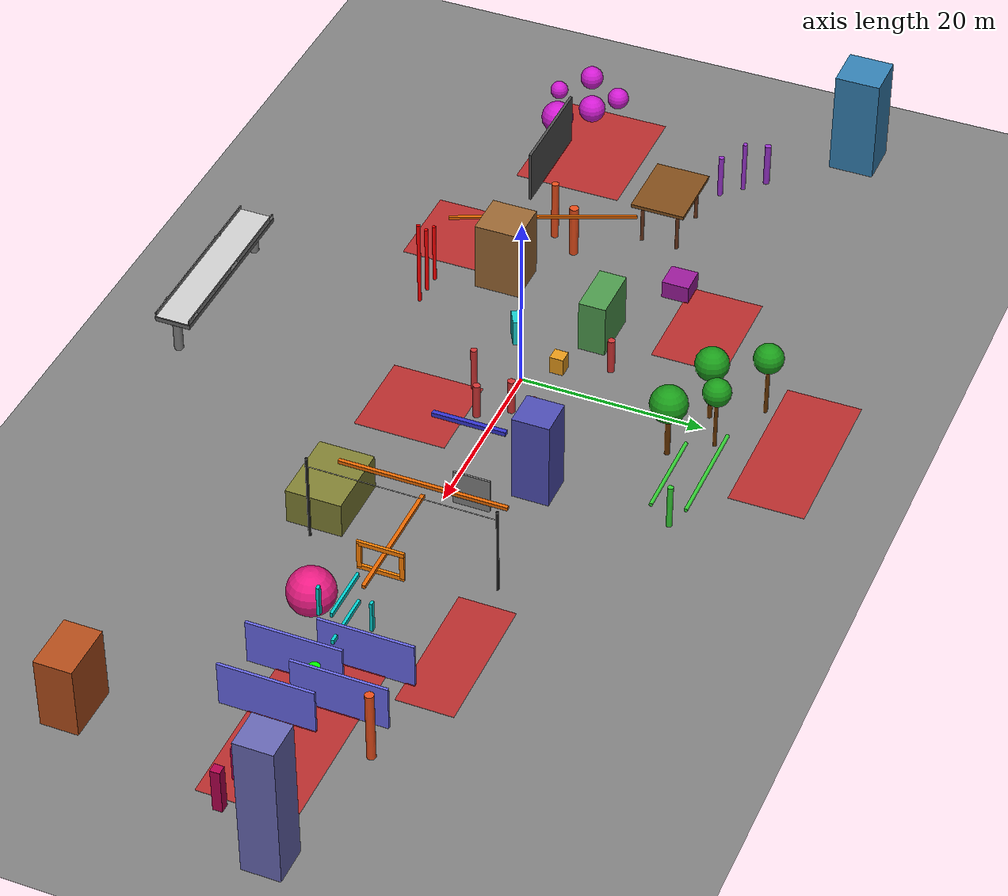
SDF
<sdf version="1.9">
 <world name="default">
  <physics type="ode">
   <max_step_size>0.01</max_step_size>
   <real_time_factor>1.0</real_time_factor>
   <real_time_update_rate>100</real_time_update_rate>
  </physics>
  <plugin filename="gz-sim-physics-system" name="gz::sim::systems::Physics"/>
  <plugin filename="gz-sim-user-commands-system" name="gz::sim::systems::UserCommands"/>
  <plugin filename="gz-sim-scene-broadcaster-system" name="gz::sim::systems::SceneBroadcaster"/>
  <plugin filename="gz-sim-sensors-system" name="gz::sim::systems::Sensors">
   <render_engine>ogre2</render_engine>
  </plugin>
  <plugin filename="gz-sim-imu-system" name="gz::sim::systems::Imu"/>
  <plugin filename="gz-sim-magnetometer-system" name="gz::sim::systems::Magnetometer"/>
  <plugin filename="gz-sim-air-pressure-system" name="gz::sim::systems::AirPressure"/>
  <plugin filename="gz-sim-navsat-system" name="gz::sim::systems::NavSat"/>
  <plugin filename="gz-sim-thermal-system" name="gz::sim::systems::Thermal">
   <temperature>300.0</temperature>
  </plugin>
  <gravity>0 0 -9.8</gravity>
  <magnetic_field>6e-06 2.3e-05 -4.2e-05</magnetic_field>
  <atmosphere type="adiabatic"/>
  <scene>
   <grid>false</grid>
   <ambient>0.4 0.4 0.4 1</ambient>
   <background>0.7 0.7 0.7 1</background>
   <shadows>true</shadows>
  </scene>
  <model name="ground_plane">
   <static>true</static>
   <link name="link">
    <temperature>293.15</temperature>
    <collision name="collision">
     <geometry><plane><normal>0 0 1</normal><size>300 300</size></plane></geometry>
    </collision>
    <visual name="visual">
     <geometry><plane><normal>0 0 1</normal><size>300 300</size></plane></geometry>
     <material>
      <ambient>0.5 0.5 0.5 1</ambient>
      <diffuse>0.5 0.5 0.5 1</diffuse>
      <specular>0.2 0.2 0.2 1</specular>
     </material>
    </visual>
   </link>
  </model>
  <model name="pillar_1">
   <static>true</static>
   <pose>5 1 2 0 0 0</pose>
   <link name="l">
    <collision name="c">
     <geometry><cylinder><radius>0.4</radius><length>4</length></cylinder></geometry>
    </collision>
    <visual name="v">
     <geometry><cylinder><radius>0.4</radius><length>4</length></cylinder></geometry>
     <material><diffuse>0.8 0.2 0.2 1</diffuse></material>
    </visual>
   </link>
  </model>
  <model name="pillar_2">
   <static>true</static>
   <pose>7 -2 2 0 0 0</pose>
   <link name="l">
    <collision name="c">
     <geometry><cylinder><radius>0.4</radius><length>4</length></cylinder></geometry>
    </collision>
    <visual name="v">
     <geometry><cylinder><radius>0.4</radius><length>4</length></cylinder></geometry>
     <material><diffuse>0.8 0.2 0.2 1</diffuse></material>
    </visual>
   </link>
  </model>
  <model name="pillar_3">
   <static>true</static>
   <pose>3 -4 2.5 0 0 0</pose>
   <link name="l">
    <collision name="c">
     <geometry><cylinder><radius>0.35</radius><length>5</length></cylinder></geometry>
    </collision>
    <visual name="v">
     <geometry><cylinder><radius>0.35</radius><length>5</length></cylinder></geometry>
     <material><diffuse>0.8 0.2 0.2 1</diffuse></material>
    </visual>
   </link>
  </model>
  <model name="pillar_4">
   <static>true</static>
   <pose>9 5 3 0 0 0</pose>
   <link name="l">
    <collision name="c">
     <geometry><cylinder><radius>0.45</radius><length>6</length></cylinder></geometry>
    </collision>
    <visual name="v">
     <geometry><cylinder><radius>0.45</radius><length>6</length></cylinder></geometry>
     <material><diffuse>0.8 0.2 0.2 1</diffuse></material>
    </visual>
   </link>
  </model>
  <model name="pillar_5">
   <static>true</static>
   <pose>-5 8 2 0 0 0</pose>
   <link name="l">
    <collision name="c">
     <geometry><cylinder><radius>0.4</radius><length>4</length></cylinder></geometry>
    </collision>
    <visual name="v">
     <geometry><cylinder><radius>0.4</radius><length>4</length></cylinder></geometry>
     <material><diffuse>0.8 0.2 0.2 1</diffuse></material>
    </visual>
   </link>
  </model>
  <model name="building_1">
   <static>true</static>
   <pose>15 8 5 0 0 0</pose>
   <link name="l">
    <collision name="c"><geometry><box><size>4 4 10</size></box></geometry></collision>
    <visual name="v">
     <geometry><box><size>4 4 10</size></box></geometry>
     <material><diffuse>0.3 0.3 0.7 1</diffuse></material>
    </visual>
   </link>
  </model>
  <model name="building_2">
   <static>true</static>
   <pose>-10 5 3 0 0 0</pose>
   <link name="l">
    <collision name="c"><geometry><box><size>6 3 6</size></box></geometry></collision>
    <visual name="v">
     <geometry><box><size>6 3 6</size></box></geometry>
     <material><diffuse>0.3 0.6 0.3 1</diffuse></material>
    </visual>
   </link>
  </model>
  <model name="building_3">
   <static>true</static>
   <pose>-15 -8 4 0 0 0</pose>
   <link name="l">
    <collision name="c"><geometry><box><size>5 5 8</size></box></geometry></collision>
    <visual name="v">
     <geometry><box><size>5 5 8</size></box></geometry>
     <material><diffuse>0.6 0.4 0.2 1</diffuse></material>
    </visual>
   </link>
  </model>
  <model name="building_4">
   <static>true</static>
   <pose>25 -10 2 0 0 0</pose>
   <link name="l">
    <collision name="c"><geometry><box><size>8 6 4</size></box></geometry></collision>
    <visual name="v">
     <geometry><box><size>8 6 4</size></box></geometry>
     <material><diffuse>0.5 0.5 0.2 1</diffuse></material>
    </visual>
   </link>
  </model>
  <model name="gate_top">
   <static>true</static>
   <pose>13.5 0 4.75 0 0 0</pose>
   <link name="l">
    <collision name="c"><geometry><box><size>0.5 8 0.5</size></box></geometry></collision>
    <visual name="v">
     <geometry><box><size>0.5 8 0.5</size></box></geometry>
     <material><diffuse>0.2 0.2 0.8 1</diffuse></material>
    </visual>
   </link>
  </model>
  <model name="wall_with_hole">
   <static>true</static>
   <pose>20 0 2 0 0 0</pose>
   <link name="wall_left">
    <pose>0 3 0 0 0 0</pose>
    <collision name="c"><geometry><box><size>0.2 4 4</size></box></geometry></collision>
    <visual name="v">
     <geometry><box><size>0.2 4 4</size></box></geometry>
     <material><diffuse>0.5 0.5 0.5 1</diffuse></material>
    </visual>
   </link>
  </model>
  <model name="ring1_top">
   <static>true</static>
   <pose>35 0 6 0 0 0</pose>
   <link name="l">
    <collision name="c"><geometry><box><size>0.3 5 0.5</size></box></geometry></collision>
    <visual name="v">
     <geometry><box><size>0.3 5 0.5</size></box></geometry>
     <material><diffuse>1 0.5 0 1</diffuse></material>
    </visual>
   </link>
  </model>
  <model name="ring1_bot">
   <static>true</static>
   <pose>35 0 3 0 0 0</pose>
   <link name="l">
    <collision name="c"><geometry><box><size>0.3 5 0.5</size></box></geometry></collision>
    <visual name="v">
     <geometry><box><size>0.3 5 0.5</size></box></geometry>
     <material><diffuse>1 0.5 0 1</diffuse></material>
    </visual>
   </link>
  </model>
  <model name="ring1_left">
   <static>true</static>
   <pose>35 2.25 4.5 0 0 0</pose>
   <link name="l">
    <collision name="c"><geometry><box><size>0.3 0.5 3</size></box></geometry></collision>
    <visual name="v">
     <geometry><box><size>0.3 0.5 3</size></box></geometry>
     <material><diffuse>1 0.5 0 1</diffuse></material>
    </visual>
   </link>
  </model>
  <model name="ring1_right">
   <static>true</static>
   <pose>35 -2.25 4.5 0 0 0</pose>
   <link name="l">
    <collision name="c"><geometry><box><size>0.3 0.5 3</size></box></geometry></collision>
    <visual name="v">
     <geometry><box><size>0.3 0.5 3</size></box></geometry>
     <material><diffuse>1 0.5 0 1</diffuse></material>
    </visual>
   </link>
  </model>
  <model name="box_obs_1">
   <static>true</static>
   <pose>-3 3 1 0 0 0</pose>
   <link name="l">
    <collision name="c"><geometry><box><size>1.5 1.5 2</size></box></geometry></collision>
    <visual name="v">
     <geometry><box><size>1.5 1.5 2</size></box></geometry>
     <material><diffuse>0.9 0.6 0.1 1</diffuse></material>
    </visual>
   </link>
  </model>
  <model name="box_obs_2">
   <static>true</static>
   <pose>-6 -3 1.5 0 0 0.5</pose>
   <link name="l">
    <collision name="c"><geometry><box><size>2 1 3</size></box></geometry></collision>
    <visual name="v">
     <geometry><box><size>2 1 3</size></box></geometry>
     <material><diffuse>0.1 0.8 0.8 1</diffuse></material>
    </visual>
   </link>
  </model>
  <model name="box_obs_4">
   <static>true</static>
   <pose>-20 10 1 0 0 0</pose>
   <link name="l">
    <collision name="c"><geometry><box><size>3 3 2</size></box></geometry></collision>
    <visual name="v">
     <geometry><box><size>3 3 2</size></box></geometry>
     <material><diffuse>0.6 0.1 0.6 1</diffuse></material>
    </visual>
   </link>
  </model>
  <model name="sphere_obs_1">
   <static>true</static>
   <pose>40 -5 3 0 0 0</pose>
   <link name="l">
    <collision name="c"><geometry><sphere><radius>2.5</radius></sphere></geometry></collision>
    <visual name="v">
     <geometry><sphere><radius>2.5</radius></sphere></geometry>
     <material><diffuse>0.9 0.1 0.5 1</diffuse></material>
    </visual>
   </link>
  </model>
  <model name="spike_1">
   <static>true</static>
   <pose>-8 -15 5 0 0 0</pose>
   <link name="l">
    <collision name="c">
     <geometry><cylinder><radius>0.2</radius><length>10</length></cylinder></geometry>
    </collision>
    <visual name="v">
     <geometry><cylinder><radius>0.2</radius><length>10</length></cylinder></geometry>
     <material><diffuse>1 0 0 1</diffuse></material>
    </visual>
   </link>
  </model>
  <model name="spike_2">
   <static>true</static>
   <pose>-10 -15 4 0 0 0</pose>
   <link name="l">
    <collision name="c">
     <geometry><cylinder><radius>0.2</radius><length>8</length></cylinder></geometry>
    </collision>
    <visual name="v">
     <geometry><cylinder><radius>0.2</radius><length>8</length></cylinder></geometry>
     <material><diffuse>1 0 0 1</diffuse></material>
    </visual>
   </link>
  </model>
  <model name="spike_3">
   <static>true</static>
   <pose>-12 -15 3.5 0 0 0</pose>
   <link name="l">
    <collision name="c">
     <geometry><cylinder><radius>0.2</radius><length>7</length></cylinder></geometry>
    </collision>
    <visual name="v">
     <geometry><cylinder><radius>0.2</radius><length>7</length></cylinder></geometry>
     <material><diffuse>1 0 0 1</diffuse></material>
    </visual>
   </link>
  </model>
  <model name="final_goal_marker">
   <static>true</static>
   <pose>50 0 2 0 0 0</pose>
   <link name="l">
    <visual name="v">
     <geometry><cylinder><radius>0.6</radius><length>4</length></cylinder></geometry>
     <material><diffuse>0 1 0 1</diffuse></material>
    </visual>
   </link>
  </model>
  <model name="nofly_zone_1">
   <static>true</static>
   <pose>8 -8 0.05 0 0 0</pose>
   <link name="l">
    <collision name="c"><geometry><box><size>10 10 0.1</size></box></geometry></collision>
    <visual name="v">
     <geometry><box><size>10 10 0.1</size></box></geometry>
     <material><ambient>0.9 0.0 0.0 0.6</ambient><diffuse>0.9 0.0 0.0 0.6</diffuse></material>
    </visual>
   </link>
  </model>
  <model name="nofly_zone_2">
   <static>true</static>
   <pose>-15 15 0.05 0 0 0</pose>
   <link name="l">
    <collision name="c"><geometry><box><size>12 8 0.1</size></box></geometry></collision>
    <visual name="v">
     <geometry><box><size>12 8 0.1</size></box></geometry>
     <material><ambient>0.9 0.0 0.0 0.6</ambient><diffuse>0.9 0.0 0.0 0.6</diffuse></material>
    </visual>
   </link>
  </model>
  <model name="nofly_zone_3">
   <static>true</static>
   <pose>40 10 0.05 0 0 0</pose>
   <link name="l">
    <collision name="c"><geometry><box><size>15 6 0.1</size></box></geometry></collision>
    <visual name="v">
     <geometry><box><size>15 6 0.1</size></box></geometry>
     <material><ambient>0.9 0.0 0.0 0.6</ambient><diffuse>0.9 0.0 0.0 0.6</diffuse></material>
    </visual>
   </link>
  </model>
  <model name="nofly_zone_4">
   <static>true</static>
   <pose>-20 -15 0.05 0 0 0</pose>
   <link name="l">
    <collision name="c"><geometry><box><size>10 10 0.1</size></box></geometry></collision>
    <visual name="v">
     <geometry><box><size>10 10 0.1</size></box></geometry>
     <material><ambient>0.9 0.0 0.0 0.6</ambient><diffuse>0.9 0.0 0.0 0.6</diffuse></material>
    </visual>
   </link>
  </model>
  <model name="zzwall_1">
   <static>true</static>
   <pose>45 3 2.5 0 0 0</pose>
   <link name="l">
    <collision name="c"><geometry><box><size>0.3 10 5</size></box></geometry></collision>
    <visual name="v">
     <geometry><box><size>0.3 10 5</size></box></geometry>
     <material><diffuse>0.4 0.4 0.9 1</diffuse></material>
    </visual>
   </link>
  </model>
  <model name="zzwall_2">
   <static>true</static>
   <pose>48 -3 2.5 0 0 0</pose>
   <link name="l">
    <collision name="c"><geometry><box><size>0.3 10 5</size></box></geometry></collision>
    <visual name="v">
     <geometry><box><size>0.3 10 5</size></box></geometry>
     <material><diffuse>0.4 0.4 0.9 1</diffuse></material>
    </visual>
   </link>
  </model>
  <model name="zzwall_3">
   <static>true</static>
   <pose>51 3 2.5 0 0 0</pose>
   <link name="l">
    <collision name="c"><geometry><box><size>0.3 10 5</size></box></geometry></collision>
    <visual name="v">
     <geometry><box><size>0.3 10 5</size></box></geometry>
     <material><diffuse>0.4 0.4 0.9 1</diffuse></material>
    </visual>
   </link>
  </model>
  <model name="zzwall_4">
   <static>true</static>
   <pose>54 -3 2.5 0 0 0</pose>
   <link name="l">
    <collision name="c"><geometry><box><size>0.3 10 5</size></box></geometry></collision>
    <visual name="v">
     <geometry><box><size>0.3 10 5</size></box></geometry>
     <material><diffuse>0.4 0.4 0.9 1</diffuse></material>
    </visual>
   </link>
  </model>
  <model name="platform_top">
   <static>true</static>
   <pose>-30 5 5 0 0 0</pose>
   <link name="l">
    <collision name="c"><geometry><box><size>8 6 0.4</size></box></geometry></collision>
    <visual name="v">
     <geometry><box><size>8 6 0.4</size></box></geometry>
     <material><diffuse>0.5 0.3 0.1 1</diffuse></material>
    </visual>
   </link>
  </model>
  <model name="platform_leg1">
   <static>true</static>
   <pose>-27 7 2.5 0 0 0</pose>
   <link name="l">
    <collision name="c">
     <geometry><cylinder><radius>0.2</radius><length>5</length></cylinder></geometry>
    </collision>
    <visual name="v">
     <geometry><cylinder><radius>0.2</radius><length>5</length></cylinder></geometry>
     <material><diffuse>0.4 0.2 0.1 1</diffuse></material>
    </visual>
   </link>
  </model>
  <model name="platform_leg2">
   <static>true</static>
   <pose>-33 7 2.5 0 0 0</pose>
   <link name="l">
    <collision name="c">
     <geometry><cylinder><radius>0.2</radius><length>5</length></cylinder></geometry>
    </collision>
    <visual name="v">
     <geometry><cylinder><radius>0.2</radius><length>5</length></cylinder></geometry>
     <material><diffuse>0.4 0.2 0.1 1</diffuse></material>
    </visual>
   </link>
  </model>
  <model name="platform_leg3">
   <static>true</static>
   <pose>-27 3 2.5 0 0 0</pose>
   <link name="l">
    <collision name="c">
     <geometry><cylinder><radius>0.2</radius><length>5</length></cylinder></geometry>
    </collision>
    <visual name="v">
     <geometry><cylinder><radius>0.2</radius><length>5</length></cylinder></geometry>
     <material><diffuse>0.4 0.2 0.1 1</diffuse></material>
    </visual>
   </link>
  </model>
  <model name="platform_leg4">
   <static>true</static>
   <pose>-33 3 2.5 0 0 0</pose>
   <link name="l">
    <collision name="c">
     <geometry><cylinder><radius>0.2</radius><length>5</length></cylinder></geometry>
    </collision>
    <visual name="v">
     <geometry><cylinder><radius>0.2</radius><length>5</length></cylinder></geometry>
     <material><diffuse>0.4 0.2 0.1 1</diffuse></material>
    </visual>
   </link>
  </model>
  <model name="tunnel_right">
   <static>true</static>
   <pose>-35 -11 3 0 0 1.5708</pose>
   <link name="l">
    <collision name="c"><geometry><box><size>0.3 12 6</size></box></geometry></collision>
    <visual name="v">
     <geometry><box><size>0.3 12 6</size></box></geometry>
     <material><diffuse>0.3 0.3 0.3 1</diffuse></material>
    </visual>
   </link>
  </model>
  <model name="tree_trunk_1">
   <static>true</static>
   <pose>-2 20 3 0 0 0</pose>
   <link name="l">
    <collision name="c">
     <geometry><cylinder><radius>0.25</radius><length>6</length></cylinder></geometry>
    </collision>
    <visual name="v">
     <geometry><cylinder><radius>0.25</radius><length>6</length></cylinder></geometry>
     <material><diffuse>0.4 0.2 0.0 1</diffuse></material>
    </visual>
   </link>
  </model>
  <model name="tree_canopy_1">
   <static>true</static>
   <pose>-2 20 7 0 0 0</pose>
   <link name="l">
    <collision name="c"><geometry><sphere><radius>1.8</radius></sphere></geometry></collision>
    <visual name="v">
     <geometry><sphere><radius>1.8</radius></sphere></geometry>
     <material><diffuse>0.1 0.6 0.1 1</diffuse></material>
    </visual>
   </link>
  </model>
  <model name="tree_trunk_2">
   <static>true</static>
   <pose>2 22 3 0 0 0</pose>
   <link name="l">
    <collision name="c">
     <geometry><cylinder><radius>0.2</radius><length>6</length></cylinder></geometry>
    </collision>
    <visual name="v">
     <geometry><cylinder><radius>0.2</radius><length>6</length></cylinder></geometry>
     <material><diffuse>0.4 0.2 0.0 1</diffuse></material>
    </visual>
   </link>
  </model>
  <model name="tree_canopy_2">
   <static>true</static>
   <pose>2 22 7 0 0 0</pose>
   <link name="l">
    <collision name="c"><geometry><sphere><radius>1.5</radius></sphere></geometry></collision>
    <visual name="v">
     <geometry><sphere><radius>1.5</radius></sphere></geometry>
     <material><diffuse>0.1 0.6 0.1 1</diffuse></material>
    </visual>
   </link>
  </model>
  <model name="tree_trunk_3">
   <static>true</static>
   <pose>-5 25 3 0 0 0</pose>
   <link name="l">
    <collision name="c">
     <geometry><cylinder><radius>0.22</radius><length>6</length></cylinder></geometry>
    </collision>
    <visual name="v">
     <geometry><cylinder><radius>0.22</radius><length>6</length></cylinder></geometry>
     <material><diffuse>0.4 0.2 0.0 1</diffuse></material>
    </visual>
   </link>
  </model>
  <model name="tree_canopy_3">
   <static>true</static>
   <pose>-5 25 7 0 0 0</pose>
   <link name="l">
    <collision name="c"><geometry><sphere><radius>1.6</radius></sphere></geometry></collision>
    <visual name="v">
     <geometry><sphere><radius>1.6</radius></sphere></geometry>
     <material><diffuse>0.1 0.6 0.1 1</diffuse></material>
    </visual>
   </link>
  </model>
  <model name="tree_trunk_4">
   <static>true</static>
   <pose>5 18 2.5 0 0 0</pose>
   <link name="l">
    <collision name="c">
     <geometry><cylinder><radius>0.3</radius><length>5</length></cylinder></geometry>
    </collision>
    <visual name="v">
     <geometry><cylinder><radius>0.3</radius><length>5</length></cylinder></geometry>
     <material><diffuse>0.4 0.2 0.0 1</diffuse></material>
    </visual>
   </link>
  </model>
  <model name="tree_canopy_4">
   <static>true</static>
   <pose>5 18 6.5 0 0 0</pose>
   <link name="l">
    <collision name="c"><geometry><sphere><radius>2.0</radius></sphere></geometry></collision>
    <visual name="v">
     <geometry><sphere><radius>2.0</radius></sphere></geometry>
     <material><diffuse>0.1 0.6 0.1 1</diffuse></material>
    </visual>
   </link>
  </model>
  <model name="beam_1">
   <static>true</static>
   <pose>25 0 6 0 0 0</pose>
   <link name="l">
    <collision name="c"><geometry><box><size>0.4 18 0.4</size></box></geometry></collision>
    <visual name="v">
     <geometry><box><size>0.4 18 0.4</size></box></geometry>
     <material><diffuse>0.9 0.4 0.0 1</diffuse></material>
    </visual>
   </link>
  </model>
  <model name="beam_2">
   <static>true</static>
   <pose>32 0 4.5 0 0 1.5708</pose>
   <link name="l">
    <collision name="c"><geometry><box><size>0.4 14 0.4</size></box></geometry></collision>
    <visual name="v">
     <geometry><box><size>0.4 14 0.4</size></box></geometry>
     <material><diffuse>0.9 0.4 0.0 1</diffuse></material>
    </visual>
   </link>
  </model>
  <model name="beam_3">
   <static>true</static>
   <pose>-18 -5 7 0 0 0.4</pose>
   <link name="l">
    <collision name="c"><geometry><box><size>0.3 20 0.3</size></box></geometry></collision>
    <visual name="v">
     <geometry><box><size>0.3 20 0.3</size></box></geometry>
     <material><diffuse>0.9 0.4 0.0 1</diffuse></material>
    </visual>
   </link>
  </model>
  <model name="slalom_1">
   <static>true</static>
   <pose>60 2 1.5 0 0 0</pose>
   <link name="l">
    <collision name="c"><geometry><box><size>1 1 3</size></box></geometry></collision>
    <visual name="v">
     <geometry><box><size>1 1 3</size></box></geometry>
     <material><diffuse>0.7 0.0 0.3 1</diffuse></material>
    </visual>
   </link>
  </model>
  <model name="slalom_2">
   <static>true</static>
   <pose>62 -2 2 0 0 0</pose>
   <link name="l">
    <collision name="c"><geometry><box><size>1 1 4</size></box></geometry></collision>
    <visual name="v">
     <geometry><box><size>1 1 4</size></box></geometry>
     <material><diffuse>0.7 0.0 0.3 1</diffuse></material>
    </visual>
   </link>
  </model>
  <model name="slalom_3">
   <static>true</static>
   <pose>64 2 1.5 0 0 0</pose>
   <link name="l">
    <collision name="c"><geometry><box><size>1 1 3</size></box></geometry></collision>
    <visual name="v">
     <geometry><box><size>1 1 3</size></box></geometry>
     <material><diffuse>0.7 0.0 0.3 1</diffuse></material>
    </visual>
   </link>
  </model>
  <model name="slalom_4">
   <static>true</static>
   <pose>66 -2 2.5 0 0 0</pose>
   <link name="l">
    <collision name="c"><geometry><box><size>1 1 5</size></box></geometry></collision>
    <visual name="v">
     <geometry><box><size>1 1 5</size></box></geometry>
     <material><diffuse>0.7 0.0 0.3 1</diffuse></material>
    </visual>
   </link>
  </model>
  <model name="slalom_5">
   <static>true</static>
   <pose>68 2 2 0 0 0</pose>
   <link name="l">
    <collision name="c"><geometry><box><size>1 1 4</size></box></geometry></collision>
    <visual name="v">
     <geometry><box><size>1 1 4</size></box></geometry>
     <material><diffuse>0.7 0.0 0.3 1</diffuse></material>
    </visual>
   </link>
  </model>
  <model name="ring2_top">
   <static>true</static>
   <pose>43 0 7 0 0 1.5708</pose>
   <link name="l">
    <collision name="c"><geometry><box><size>0.3 6 0.5</size></box></geometry></collision>
    <visual name="v">
     <geometry><box><size>0.3 6 0.5</size></box></geometry>
     <material><diffuse>0.0 0.8 0.8 1</diffuse></material>
    </visual>
   </link>
  </model>
  <model name="ring2_bot">
   <static>true</static>
   <pose>43 0 3.5 0 0 1.5708</pose>
   <link name="l">
    <collision name="c"><geometry><box><size>0.3 6 0.5</size></box></geometry></collision>
    <visual name="v">
     <geometry><box><size>0.3 6 0.5</size></box></geometry>
     <material><diffuse>0.0 0.8 0.8 1</diffuse></material>
    </visual>
   </link>
  </model>
  <model name="ring2_left">
   <static>true</static>
   <pose>43 2.75 5.25 0 0 1.5708</pose>
   <link name="l">
    <collision name="c"><geometry><box><size>0.3 0.5 3.5</size></box></geometry></collision>
    <visual name="v">
     <geometry><box><size>0.3 0.5 3.5</size></box></geometry>
     <material><diffuse>0.0 0.8 0.8 1</diffuse></material>
    </visual>
   </link>
  </model>
  <model name="ring2_right">
   <static>true</static>
   <pose>43 -2.75 5.25 0 0 1.5708</pose>
   <link name="l">
    <collision name="c"><geometry><box><size>0.3 0.5 3.5</size></box></geometry></collision>
    <visual name="v">
     <geometry><box><size>0.3 0.5 3.5</size></box></geometry>
     <material><diffuse>0.0 0.8 0.8 1</diffuse></material>
    </visual>
   </link>
  </model>
  <model name="sph_1">
   <static>true</static>
   <pose>-45 -10 2 0 0 0</pose>
   <link name="l">
    <collision name="c"><geometry><sphere><radius>1.5</radius></sphere></geometry></collision>
    <visual name="v">
     <geometry><sphere><radius>1.5</radius></sphere></geometry>
     <material><diffuse>0.8 0.1 0.8 1</diffuse></material>
    </visual>
   </link>
  </model>
  <model name="sph_2">
   <static>true</static>
   <pose>-48 -8 2 0 0 0</pose>
   <link name="l">
    <collision name="c"><geometry><sphere><radius>1.2</radius></sphere></geometry></collision>
    <visual name="v">
     <geometry><sphere><radius>1.2</radius></sphere></geometry>
     <material><diffuse>0.8 0.1 0.8 1</diffuse></material>
    </visual>
   </link>
  </model>
  <model name="sph_3">
   <static>true</static>
   <pose>-42 -13 2 0 0 0</pose>
   <link name="l">
    <collision name="c"><geometry><sphere><radius>1.8</radius></sphere></geometry></collision>
    <visual name="v">
     <geometry><sphere><radius>1.8</radius></sphere></geometry>
     <material><diffuse>0.8 0.1 0.8 1</diffuse></material>
    </visual>
   </link>
  </model>
  <model name="sph_4">
   <static>true</static>
   <pose>-45 -14 3.5 0 0 0</pose>
   <link name="l">
    <collision name="c"><geometry><sphere><radius>1.0</radius></sphere></geometry></collision>
    <visual name="v">
     <geometry><sphere><radius>1.0</radius></sphere></geometry>
     <material><diffuse>0.8 0.1 0.8 1</diffuse></material>
    </visual>
   </link>
  </model>
  <model name="sph_5">
   <static>true</static>
   <pose>-50 -12 2.5 0 0 0</pose>
   <link name="l">
    <collision name="c"><geometry><sphere><radius>1.3</radius></sphere></geometry></collision>
    <visual name="v">
     <geometry><sphere><radius>1.3</radius></sphere></geometry>
     <material><diffuse>0.8 0.1 0.8 1</diffuse></material>
    </visual>
   </link>
  </model>
  <model name="bld_6">
   <static>true</static>
   <pose>-50 20 6 0 0 0</pose>
   <link name="l">
    <collision name="c"><geometry><box><size>5 5 12</size></box></geometry></collision>
    <visual name="v">
     <geometry><box><size>5 5 12</size></box></geometry>
     <material><diffuse>0.2 0.5 0.7 1</diffuse></material>
    </visual>
   </link>
  </model>
  <model name="bld_7">
   <static>true</static>
   <pose>60 -20 4 0 0 0</pose>
   <link name="l">
    <collision name="c"><geometry><box><size>6 4 8</size></box></geometry></collision>
    <visual name="v">
     <geometry><box><size>6 4 8</size></box></geometry>
     <material><diffuse>0.7 0.3 0.1 1</diffuse></material>
    </visual>
   </link>
  </model>
  <model name="bld_8">
   <static>true</static>
   <pose>70 5 8 0 0 0</pose>
   <link name="l">
    <collision name="c"><geometry><box><size>4 4 16</size></box></geometry></collision>
    <visual name="v">
     <geometry><box><size>4 4 16</size></box></geometry>
     <material><diffuse>0.4 0.4 0.7 1</diffuse></material>
    </visual>
   </link>
  </model>
  <model name="pillar_6">
   <static>true</static>
   <pose>-22 -3 3 0 0 0</pose>
   <link name="l">
    <collision name="c">
     <geometry><cylinder><radius>0.5</radius><length>6</length></cylinder></geometry>
    </collision>
    <visual name="v">
     <geometry><cylinder><radius>0.5</radius><length>6</length></cylinder></geometry>
     <material><diffuse>0.9 0.3 0.1 1</diffuse></material>
    </visual>
   </link>
  </model>
  <model name="pillar_7">
   <static>true</static>
   <pose>-24 -6 3.5 0 0 0</pose>
   <link name="l">
    <collision name="c">
     <geometry><cylinder><radius>0.4</radius><length>7</length></cylinder></geometry>
    </collision>
    <visual name="v">
     <geometry><cylinder><radius>0.4</radius><length>7</length></cylinder></geometry>
     <material><diffuse>0.9 0.3 0.1 1</diffuse></material>
    </visual>
   </link>
  </model>
  <model name="pillar_8">
   <static>true</static>
   <pose>55 8 4 0 0 0</pose>
   <link name="l">
    <collision name="c">
     <geometry><cylinder><radius>0.45</radius><length>8</length></cylinder></geometry>
    </collision>
    <visual name="v">
     <geometry><cylinder><radius>0.45</radius><length>8</length></cylinder></geometry>
     <material><diffuse>0.9 0.3 0.1 1</diffuse></material>
    </visual>
   </link>
  </model>
  <model name="nofly_zone_5">
   <static>true</static>
   <pose>55 0 0.05 0 0 0</pose>
   <link name="l">
    <collision name="c"><geometry><box><size>20 10 0.1</size></box></geometry></collision>
    <visual name="v">
     <geometry><box><size>20 10 0.1</size></box></geometry>
     <material><ambient>0.9 0.0 0.0 0.6</ambient><diffuse>0.9 0.0 0.0 0.6</diffuse></material>
    </visual>
   </link>
  </model>
  <model name="nofly_zone_6">
   <static>true</static>
   <pose>-40 -8 0.05 0 0 0</pose>
   <link name="l">
    <collision name="c"><geometry><box><size>15 12 0.1</size></box></geometry></collision>
    <visual name="v">
     <geometry><box><size>15 12 0.1</size></box></geometry>
     <material><ambient>0.9 0.0 0.0 0.6</ambient><diffuse>0.9 0.0 0.0 0.6</diffuse></material>
    </visual>
   </link>
  </model>
  <model name="nofly_zone_7">
   <static>true</static>
   <pose>0 30 0.05 0 0 0</pose>
   <link name="l">
    <collision name="c"><geometry><box><size>18 8 0.1</size></box></geometry></collision>
    <visual name="v">
     <geometry><box><size>18 8 0.1</size></box></geometry>
     <material><ambient>0.9 0.0 0.0 0.6</ambient><diffuse>0.9 0.0 0.0 0.6</diffuse></material>
    </visual>
   </link>
  </model>
  <model name="forest_col_1">
   <static>true</static>
   <pose>-38 8 2.5 0 0 0</pose>
   <link name="l">
    <collision name="c">
     <geometry><cylinder><radius>0.3</radius><length>5</length></cylinder></geometry>
    </collision>
    <visual name="v">
     <geometry><cylinder><radius>0.3</radius><length>5</length></cylinder></geometry>
     <material><diffuse>0.6 0.2 0.8 1</diffuse></material>
    </visual>
   </link>
  </model>
  <model name="forest_col_2">
   <static>true</static>
   <pose>-40 10 3 0 0 0</pose>
   <link name="l">
    <collision name="c">
     <geometry><cylinder><radius>0.25</radius><length>6</length></cylinder></geometry>
    </collision>
    <visual name="v">
     <geometry><cylinder><radius>0.25</radius><length>6</length></cylinder></geometry>
     <material><diffuse>0.6 0.2 0.8 1</diffuse></material>
    </visual>
   </link>
  </model>
  <model name="forest_col_3">
   <static>true</static>
   <pose>-42 12 2.5 0 0 0</pose>
   <link name="l">
    <collision name="c">
     <geometry><cylinder><radius>0.35</radius><length>5</length></cylinder></geometry>
    </collision>
    <visual name="v">
     <geometry><cylinder><radius>0.35</radius><length>5</length></cylinder></geometry>
     <material><diffuse>0.6 0.2 0.8 1</diffuse></material>
    </visual>
   </link>
  </model>
  <model name="pipe_low_1">
   <static>true</static>
   <pose>10 20 2 0 1.5708 0</pose>
   <link name="l">
    <collision name="c">
     <geometry><cylinder><radius>0.2</radius><length>10</length></cylinder></geometry>
    </collision>
    <visual name="v">
     <geometry><cylinder><radius>0.2</radius><length>10</length></cylinder></geometry>
     <material><diffuse>0.2 0.8 0.2 1</diffuse></material>
    </visual>
   </link>
  </model>
  <model name="pipe_low_2">
   <static>true</static>
   <pose>10 24 3.5 0 1.5708 0</pose>
   <link name="l">
    <collision name="c">
     <geometry><cylinder><radius>0.2</radius><length>12</length></cylinder></geometry>
    </collision>
    <visual name="v">
     <geometry><cylinder><radius>0.2</radius><length>12</length></cylinder></geometry>
     <material><diffuse>0.2 0.8 0.2 1</diffuse></material>
    </visual>
   </link>
  </model>
  <model name="pipe_vertical_1">
   <static>true</static>
   <pose>15 22 2.5 0 0 0</pose>
   <link name="l">
    <collision name="c">
     <geometry><cylinder><radius>0.3</radius><length>5</length></cylinder></geometry>
    </collision>
    <visual name="v">
     <geometry><cylinder><radius>0.3</radius><length>5</length></cylinder></geometry>
     <material><diffuse>0.2 0.8 0.2 1</diffuse></material>
    </visual>
   </link>
  </model>
  <model name="debris_box_1">
   <static>true</static>
   <pose>48 3 0.5 0 0 0.4</pose>
   <link name="l">
    <collision name="c"><geometry><box><size>1 1 1</size></box></geometry></collision>
    <visual name="v">
     <geometry><box><size>1 1 1</size></box></geometry>
     <material><diffuse>0.5 0.5 0.5 1</diffuse></material>
    </visual>
   </link>
  </model>
  <model name="debris_sphere_1">
   <static>true</static>
   <pose>52 -3 1 0 0 0</pose>
   <link name="l">
    <collision name="c"><geometry><sphere><radius>0.8</radius></sphere></geometry></collision>
    <visual name="v">
     <geometry><sphere><radius>0.8</radius></sphere></geometry>
     <material><diffuse>0.4 0.4 0.4 1</diffuse></material>
    </visual>
   </link>
  </model>
  <model name="inspection_bridge">
   <static>true</static>
   <pose>0 -35 4 0 0 0</pose>
   <link name="deck">
    <temperature>300.0</temperature>
    <collision name="collision"><geometry><box><size>20 4 0.5</size></box></geometry></collision>
    <visual name="visual">
     <geometry><box><size>20 4 0.5</size></box></geometry>
     <material><ambient>0.3 0.3 0.3 1</ambient><diffuse>0.4 0.4 0.4 1</diffuse></material>
    </visual>
   </link>
   <link name="full_bridge_crack_overlay">
    <pose>0 0 0.35 0 0 0</pose>
    <visual name="visual">
     <geometry><plane><normal>0 0 1</normal><size>20 4</size></plane></geometry>
     <material>
      <ambient>0.8 0.8 0.8 1</ambient>
      <diffuse>0.8 0.8 0.8 1</diffuse>
      <pbr>
       <metal>
        <albedo_map>/home/harsh/PX4-Autopilot/Tools/simulation/gz/models/bridge_materials/textures/textures/concrete_crack_albedo.png</albedo_map>
        <normal_map>/home/harsh/PX4-Autopilot/Tools/simulation/gz/models/bridge_materials/textures/textures/concrete_crack_normal.png</normal_map>
        <texture_scaling>10 2</texture_scaling>
        <roughness>0.9</roughness>
        <metalness>0.1</metalness>
       </metal>
      </pbr>
     </material>
    </visual>
   </link>
   <link name="rail_left">
    <pose>0 1.9 0.5 0 0 0</pose>
    <collision name="collision"><geometry><box><size>20 0.1 0.6</size></box></geometry></collision>
    <visual name="visual">
     <geometry><box><size>20 0.1 0.6</size></box></geometry>
     <material><ambient>0.4 0.4 0.4 1</ambient><diffuse>0.5 0.5 0.5 1</diffuse></material>
    </visual>
   </link>
   <link name="spall_L1">
    <pose>-9.5 1.96 0.5 0 0 0</pose>
    <visual name="v">
     <geometry><plane><normal>0 1 0</normal><size>0.8 0.4</size></plane></geometry>
     <material>
      <ambient>0.8 0.8 0.8 1</ambient>
      <diffuse>0.8 0.8 0.8 1</diffuse>
      <pbr>
       <metal>
        <albedo_map>/home/harsh/PX4-Autopilot/Tools/simulation/gz/models/bridge_materials/textures/concrete_spall_albedo.png</albedo_map>
        <normal_map>/home/harsh/PX4-Autopilot/Tools/simulation/gz/models/bridge_materials/textures/concrete_spall_normal.png</normal_map>
        <roughness_map>/home/harsh/PX4-Autopilot/Tools/simulation/gz/models/bridge_materials/textures/concrete_spall_rough.png</roughness_map>
        <texture_scaling>1 1</texture_scaling>
       </metal>
      </pbr>
     </material>
    </visual>
   </link>
   <link name="spall_L7">
    <pose>-0.5 1.96 0.5 0 0 0</pose>
    <visual name="v">
     <geometry><plane><normal>0 1 0</normal><size>1.5 0.5</size></plane></geometry>
     <material>
      <ambient>0.8 0.8 0.8 1</ambient>
      <diffuse>0.8 0.8 0.8 1</diffuse>
      <pbr>
       <metal>
        <albedo_map>/home/harsh/PX4-Autopilot/Tools/simulation/gz/models/bridge_materials/textures/concrete_spall_albedo.png</albedo_map>
        <normal_map>/home/harsh/PX4-Autopilot/Tools/simulation/gz/models/bridge_materials/textures/concrete_spall_normal.png</normal_map>
        <roughness_map>/home/harsh/PX4-Autopilot/Tools/simulation/gz/models/bridge_materials/textures/concrete_spall_rough.png</roughness_map>
        <texture_scaling>1 1</texture_scaling>
       </metal>
      </pbr>
     </material>
    </visual>
   </link>
   <link name="spall_L10">
    <pose>4.0 1.96 0.5 0 0 0.4</pose>
    <visual name="v">
     <geometry><plane><normal>0 1 0</normal><size>0.6 0.5</size></plane></geometry>
     <material>
      <ambient>0.8 0.8 0.8 1</ambient>
      <diffuse>0.8 0.8 0.8 1</diffuse>
      <pbr>
       <metal>
        <albedo_map>/home/harsh/PX4-Autopilot/Tools/simulation/gz/models/bridge_materials/textures/concrete_spall_albedo.png</albedo_map>
        <normal_map>/home/harsh/PX4-Autopilot/Tools/simulation/gz/models/bridge_materials/textures/concrete_spall_normal.png</normal_map>
        <roughness_map>/home/harsh/PX4-Autopilot/Tools/simulation/gz/models/bridge_materials/textures/concrete_spall_rough.png</roughness_map>
        <texture_scaling>1 1</texture_scaling>
       </metal>
      </pbr>
     </material>
    </visual>
   </link>
   <link name="spall_L13">
    <pose>8.5 1.96 0.5 0 0 0</pose>
    <visual name="v">
     <geometry><plane><normal>0 1 0</normal><size>0.9 0.4</size></plane></geometry>
     <material>
      <ambient>0.8 0.8 0.8 1</ambient>
      <diffuse>0.8 0.8 0.8 1</diffuse>
      <pbr>
       <metal>
        <albedo_map>/home/harsh/PX4-Autopilot/Tools/simulation/gz/models/bridge_materials/textures/concrete_spall_albedo.png</albedo_map>
        <normal_map>/home/harsh/PX4-Autopilot/Tools/simulation/gz/models/bridge_materials/textures/concrete_spall_normal.png</normal_map>
        <roughness_map>/home/harsh/PX4-Autopilot/Tools/simulation/gz/models/bridge_materials/textures/concrete_spall_rough.png</roughness_map>
        <texture_scaling>1 1</texture_scaling>
       </metal>
      </pbr>
     </material>
    </visual>
   </link>
   <link name="spall_R1">
    <pose>-9.0 -1.96 0.5 0 0 0</pose>
    <visual name="v">
     <geometry><plane><normal>0 -1 0</normal><size>1.0 0.5</size></plane></geometry>
     <material>
      <ambient>0.8 0.8 0.8 1</ambient>
      <diffuse>0.8 0.8 0.8 1</diffuse>
      <pbr>
       <metal>
        <albedo_map>/home/harsh/PX4-Autopilot/Tools/simulation/gz/models/bridge_materials/textures/concrete_spall_albedo.png</albedo_map>
        <normal_map>/home/harsh/PX4-Autopilot/Tools/simulation/gz/models/bridge_materials/textures/concrete_spall_normal.png</normal_map>
        <roughness_map>/home/harsh/PX4-Autopilot/Tools/simulation/gz/models/bridge_materials/textures/concrete_spall_rough.png</roughness_map>
        <texture_scaling>1 1</texture_scaling>
       </metal>
      </pbr>
     </material>
    </visual>
   </link>
   <link name="spall_R4">
    <pose>-4.5 -1.96 0.5 0 0 -0.4</pose>
    <visual name="v">
     <geometry><plane><normal>0 -1 0</normal><size>0.8 0.4</size></plane></geometry>
     <material>
      <ambient>0.8 0.8 0.8 1</ambient>
      <diffuse>0.8 0.8 0.8 1</diffuse>
      <pbr>
       <metal>
        <albedo_map>/home/harsh/PX4-Autopilot/Tools/simulation/gz/models/bridge_materials/textures/concrete_spall_albedo.png</albedo_map>
        <normal_map>/home/harsh/PX4-Autopilot/Tools/simulation/gz/models/bridge_materials/textures/concrete_spall_normal.png</normal_map>
        <roughness_map>/home/harsh/PX4-Autopilot/Tools/simulation/gz/models/bridge_materials/textures/concrete_spall_rough.png</roughness_map>
        <texture_scaling>1 1</texture_scaling>
       </metal>
      </pbr>
     </material>
    </visual>
   </link>
   <link name="spall_R9">
    <pose>3.0 -1.96 0.6 0 0 0</pose>
    <visual name="v">
     <geometry><plane><normal>0 -1 0</normal><size>1.2 0.4</size></plane></geometry>
     <material>
      <ambient>0.8 0.8 0.8 1</ambient>
      <diffuse>0.8 0.8 0.8 1</diffuse>
      <pbr>
       <metal>
        <albedo_map>/home/harsh/PX4-Autopilot/Tools/simulation/gz/models/bridge_materials/textures/concrete_spall_albedo.png</albedo_map>
        <normal_map>/home/harsh/PX4-Autopilot/Tools/simulation/gz/models/bridge_materials/textures/concrete_spall_normal.png</normal_map>
        <roughness_map>/home/harsh/PX4-Autopilot/Tools/simulation/gz/models/bridge_materials/textures/concrete_spall_rough.png</roughness_map>
        <texture_scaling>1 1</texture_scaling>
       </metal>
      </pbr>
     </material>
    </visual>
   </link>
   <link name="spall_R12">
    <pose>7.5 -1.96 0.6 0 0 3.14</pose>
    <visual name="v">
     <geometry><plane><normal>0 -1 0</normal><size>0.6 0.6</size></plane></geometry>
     <material>
      <ambient>0.8 0.8 0.8 1</ambient>
      <diffuse>0.8 0.8 0.8 1</diffuse>
      <pbr>
       <metal>
        <albedo_map>/home/harsh/PX4-Autopilot/Tools/simulation/gz/models/bridge_materials/textures/concrete_spall_albedo.png</albedo_map>
        <normal_map>/home/harsh/PX4-Autopilot/Tools/simulation/gz/models/bridge_materials/textures/concrete_spall_normal.png</normal_map>
        <roughness_map>/home/harsh/PX4-Autopilot/Tools/simulation/gz/models/bridge_materials/textures/concrete_spall_rough.png</roughness_map>
        <texture_scaling>1 1</texture_scaling>
       </metal>
      </pbr>
     </material>
    </visual>
   </link>
   <link name="rail_right">
    <pose>0 -1.9 0.5 0 0 0</pose>
    <collision name="collision"><geometry><box><size>20 0.1 0.6</size></box></geometry></collision>
    <visual name="visual">
     <geometry><box><size>20 0.1 0.6</size></box></geometry>
     <material><ambient>0.4 0.4 0.4 1</ambient><diffuse>0.5 0.5 0.5 1</diffuse></material>
    </visual>
   </link>
   <link name="support_1">
    <pose>-9 0 -2 0 0 0</pose>
    <temperature>285.0</temperature>
    <collision name="collision">
     <geometry><cylinder><radius>0.5</radius><length>4</length></cylinder></geometry>
    </collision>
    <visual name="visual">
     <geometry><cylinder><radius>0.5</radius><length>4</length></cylinder></geometry>
     <material><diffuse>0.5 0.5 0.5 1</diffuse></material>
    </visual>
   </link>
   <link name="support_2">
    <pose>9 0 -2 0 0 0</pose>
    <temperature>285.0</temperature>
    <collision name="collision">
     <geometry><cylinder><radius>0.5</radius><length>4</length></cylinder></geometry>
    </collision>
    <visual name="visual">
     <geometry><cylinder><radius>0.5</radius><length>4</length></cylinder></geometry>
     <material><diffuse>0.5 0.5 0.5 1</diffuse></material>
    </visual>
   </link>
  </model>
  <model name="structural_damage_debris">
   <static>true</static>
   <pose>1.0 -33.0 4.26 0.5 0.2 1.5</pose>
   <link name="link">
    <temperature>380.0</temperature>
    <include><uri>https://fuel.gazebosim.org/1.0/OpenRobotics/models/Cinder Block</uri></include>
   </link>
  </model>
  <model name="power_line_pole_1">
   <static>true</static>
   <pose>30 10 5 0 0 0</pose>
   <link name="l">
    <collision name="c">
     <geometry><cylinder><radius>0.15</radius><length>10</length></cylinder></geometry>
    </collision>
    <visual name="v">
     <geometry><cylinder><radius>0.15</radius><length>10</length></cylinder></geometry>
     <material><diffuse>0.1 0.1 0.1 1</diffuse></material>
    </visual>
   </link>
  </model>
  <model name="power_line_pole_2">
   <static>true</static>
   <pose>30 -10 5 0 0 0</pose>
   <link name="l">
    <collision name="c">
     <geometry><cylinder><radius>0.15</radius><length>10</length></cylinder></geometry>
    </collision>
    <visual name="v">
     <geometry><cylinder><radius>0.15</radius><length>10</length></cylinder></geometry>
     <material><diffuse>0.1 0.1 0.1 1</diffuse></material>
    </visual>
   </link>
  </model>
  <model name="power_line_wire">
   <static>true</static>
   <pose>30 0 9 1.5708 0 0</pose>
   <link name="l">
    <collision name="c">
     <geometry><cylinder><radius>0.03</radius><length>20</length></cylinder></geometry>
    </collision>
    <visual name="v">
     <geometry><cylinder><radius>0.03</radius><length>20</length></cylinder></geometry>
     <material><diffuse>0.0 0.0 0.0 1</diffuse></material>
    </visual>
   </link>
  </model>
  <light name="sunUTC" type="directional">
   <pose>0 0 500 0 -0 0</pose>
   <intensity>1</intensity>
   <direction>0.001 0.625 -0.78</direction>
   <diffuse>0.9 0.9 0.9 1</diffuse>
   <specular>0.3 0.3 0.3 1</specular>
  </light>
  <spherical_coordinates>
   <surface_model>EARTH_WGS84</surface_model>
   <world_frame_orientation>ENU</world_frame_orientation>
   <latitude_deg>37.412173</latitude_deg>
   <longitude_deg>-121.998878</longitude_deg>
   <elevation>0</elevation>
  </spherical_coordinates>
 </world>
</sdf>
